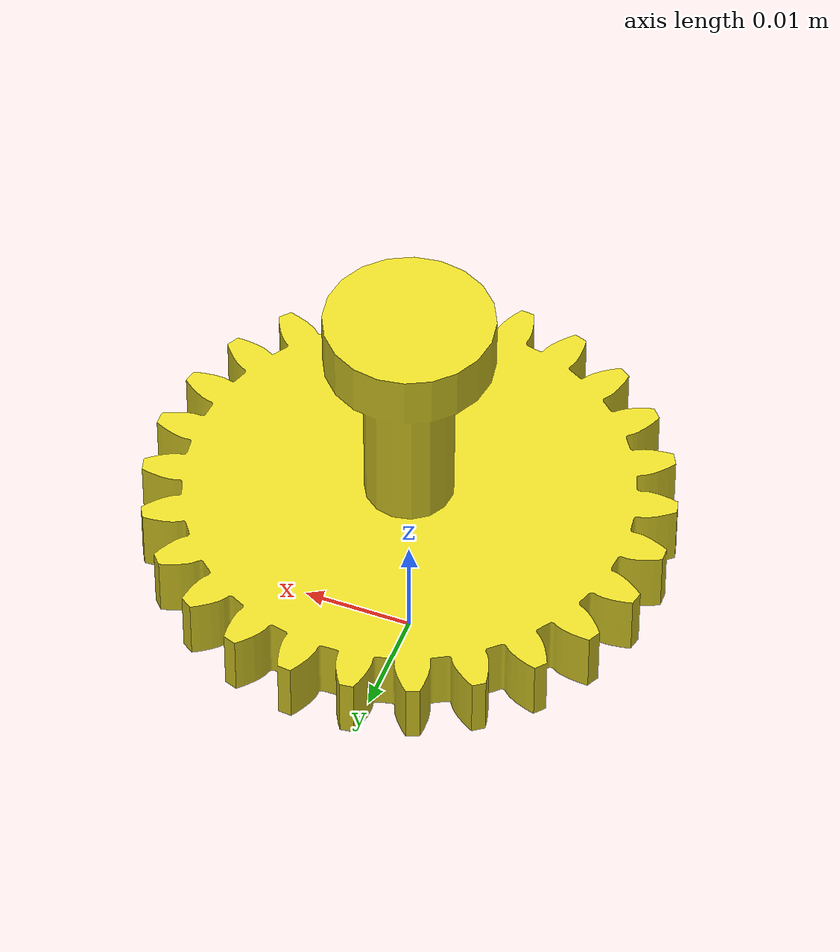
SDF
<?xml version="1.0" encoding="UTF-8"?>
<sdf version="1.5">
    <model name="sku_part_small_gear">
           <static>0</static>
            <link name="link1">
                <velocity_decay>
                    <angular>
             		.0005
             		</angular>
                </velocity_decay>
                <collision name="collision1">
                    <pose frame="">0 0 0 0 0 0</pose>
                    <geometry>
                        <mesh>
#ifdef HANDLES
                            <scale>1 1 1</scale>
                            <uri>model://gear_support/meshes/new_small_gear_Rotatex_Centered_ZeroZmin.stl</uri>
#else
                            <scale>0.0254 0.0254 0.0254</scale>
                            <uri>model://gear_support/meshes/small_gear_Centered_ZeroZmin.stl</uri>
#endif
                        </mesh>
                    </geometry>
                    <max_contacts>10</max_contacts>
#ifdef ODE
                    <surface>
                        <contact>
                            <ode>
                                <max_vel>0.1</max_vel>
                                <min_depth>0.001</min_depth>
                            </ode>
                        </contact>
                        <bounce />
                        <friction>
                            <ode>
                                <mu>1.0</mu>
                                <mu2>1.0</mu2>
                            </ode>
                        </friction>
                    </surface>
#endif
                </collision>
                <visual name="visual1">
                    <pose frame="">0 0 0 0 0 0</pose>
                    <geometry>
                        <mesh>
#ifdef HANDLES
                            <scale>1 1 1</scale>
                            <uri>model://gear_support/meshes/new_small_gear_Rotatex_Centered_ZeroZmin.stl</uri>
#else
                            <scale>0.0254 0.0254 0.0254</scale>
                            <uri>model://gear_support/meshes/small_gear_Centered_ZeroZmin.stl</uri>
#endif
                        </mesh>
                    </geometry>
                    <material>
                        <script>
                            <name>Gazebo/Yellow</name>
                            <uri>__default__</uri>
                        </script>
                    </material>
                </visual>
                <inertial>
                    <mass>0.008</mass>
                    <inertia>
                        <ixx>-1.8069</ixx>
                        <ixy>-1.38183</ixy>
                        <ixz>9.8929e-10</ixz>
                        <iyy>-1.8069</iyy>
                        <iyz>2.90322e-12</iyz>
                        <izz>0.113621</izz>
                    </inertia>
                </inertial>
                <self_collide>0</self_collide>
                <kinematic> KINEMATIC </kinematic>
                <gravity>1</gravity>
            </link>
    </model>
</sdf>
